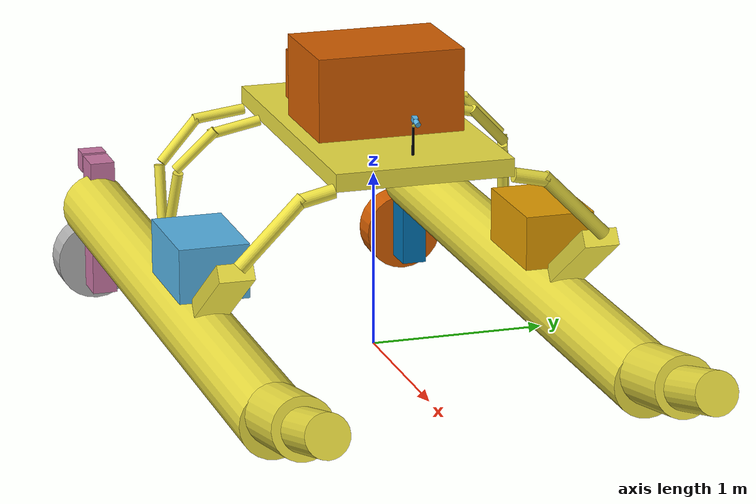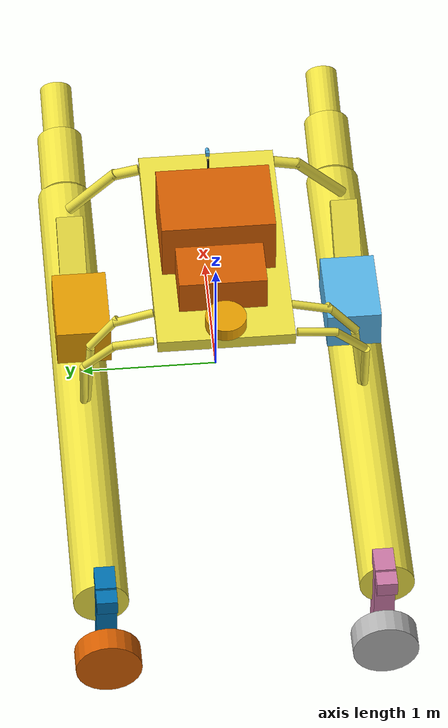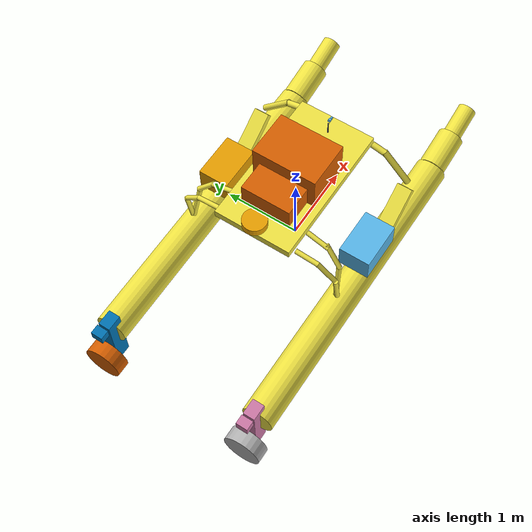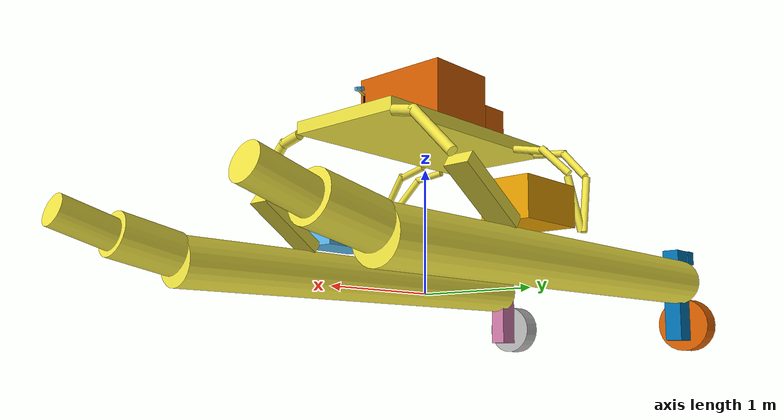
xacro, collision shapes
<?xml version="1.0" ?>
<!-- |    This document was autogenerated by xacro from cs470.urdf                     | -->
<!-- |    EDITING THIS FILE BY HAND IS NOT RECOMMENDED                                 | -->
<!-- |    This document was autogenerated by xacro from /home/seungjo/catkin_ws/src/vrx/wamv_gazebo/urdf/wamv_gazebo.urdf.xacro | -->
<!-- |    EDITING THIS FILE BY HAND IS NOT RECOMMENDED                                 | -->
<!-- Basic WAM-V with gazebo plugins for dynamics -->
<robot name="WAM-V">
  <link name="left_battery_link">
    <visual name="left_battery_visual">
      <origin rpy="0 0 0" xyz="0 -1.03 -.45"/>
      <geometry>
        <mesh filename="package://vrx_gazebo/models/battery/mesh/battery.dae"/>
      </geometry>
    </visual>
    <collision name="left_battery_collision">
      <origin rpy="0 0 0" xyz="0 0 .15"/>
      <geometry>
        <box size=".6 .4 .31"/>
      </geometry>
    </collision>
    <inertial>
      <origin rpy=" 0 0 0" xyz="0 0 .15"/>
      <mass value="23.5"/>
      <inertia ixx="0.5015291666666667" ixy="0" ixz="0" iyy="0.8931958333333333" iyz="0" izz="1.0183333333333333"/>
    </inertial>
  </link>
  <joint name="left_chasis_battery_joint" type="fixed">
    <origin rpy="0 0 0" xyz="0 1 0.45"/>
    <parent link="base_link"/>
    <child link="left_battery_link"/>
  </joint>
  <link name="right_battery_link">
    <visual name="right_battery_visual">
      <origin rpy="0 0 0" xyz="0 -1.03 -.45"/>
      <geometry>
        <mesh filename="package://vrx_gazebo/models/battery/mesh/battery.dae"/>
      </geometry>
    </visual>
    <collision name="right_battery_collision">
      <origin rpy="0 0 0" xyz="0 0 .15"/>
      <geometry>
        <box size=".6 .4 .31"/>
      </geometry>
    </collision>
    <inertial>
      <origin rpy=" 0 0 0" xyz="0 0 .15"/>
      <mass value="23.5"/>
      <inertia ixx="0.5015291666666667" ixy="0" ixz="0" iyy="0.8931958333333333" iyz="0" izz="1.0183333333333333"/>
    </inertial>
  </link>
  <joint name="right_chasis_battery_joint" type="fixed">
    <origin rpy="0 0 0" xyz="0 -1 0.45"/>
    <parent link="base_link"/>
    <child link="right_battery_link"/>
  </joint>
  <link name="base_link">
  </link>
  <joint name="dummy_joint" type="fixed">
    <parent link="base_link"/>
    <child link="dummy_link"/>
  </joint>
  <!-- Basic model of the 16' WAM-V USV -->
  <link name="dummy_link">
    <visual>
      <geometry>
        <mesh filename="package://wamv_description/models/WAM-V-Base/mesh/WAM-V-Base.dae"/>
      </geometry>
    </visual>
    <!-- Main float -->
    <collision name="left_float">
      <origin rpy="0 1.57 0" xyz="-0.4 1.03 0.2"/>
      <geometry>
        <cylinder length="4" radius="0.2"/>
      </geometry>
    </collision>
    <collision name="left_mid_float">
      <origin rpy="0 1.38 0" xyz="1.85 1.03 0.3"/>
      <geometry>
        <cylinder length="0.5" radius="0.17"/>
      </geometry>
    </collision>
    <collision name="left_front_float">
      <origin rpy="0 1.3 0" xyz="2.3 1.03 0.4"/>
      <geometry>
        <cylinder length="0.45" radius="0.12"/>
      </geometry>
    </collision>
    <!-- Front beam -->
    <collision name="front_left_beam_lower">
      <origin rpy="0.78 0 0" xyz="0.9 0.85 1"/>
      <geometry>
        <cylinder length="0.5" radius="0.04"/>
      </geometry>
    </collision>
    <collision name="front_left_beam_upper">
      <origin rpy="1.35 0 0" xyz="0.9 0.6 1.18"/>
      <geometry>
        <cylinder length="0.2" radius="0.04"/>
      </geometry>
    </collision>
    <!-- Mid beam -->
    <collision name="mid_left_beam_lower">
      <origin rpy="0.1 0.25 0" xyz="-0.65 0.99 0.7"/>
      <geometry>
        <cylinder length="0.45" radius="0.03"/>
      </geometry>
    </collision>
    <collision name="mid_left_beam_medium">
      <origin rpy="0.75 0.25 0" xyz="-0.57 0.87 1.05"/>
      <geometry>
        <cylinder length="0.32" radius="0.03"/>
      </geometry>
    </collision>
    <collision name="mid_left_beam_upper">
      <origin rpy="1.35 0.25 0" xyz="-0.55 0.65 1.17"/>
      <geometry>
        <cylinder length="0.3" radius="0.03"/>
      </geometry>
    </collision>
    <!-- Rear beam -->
    <collision name="rear_left_beam_lower">
      <origin rpy="0 -0.15 0" xyz="-0.74 1.03 0.7"/>
      <geometry>
        <cylinder length="0.45" radius="0.03"/>
      </geometry>
    </collision>
    <collision name="rear_left_beam_medium">
      <origin rpy="0.75 -0.15 0" xyz="-0.79 0.91 1.05"/>
      <geometry>
        <cylinder length="0.32" radius="0.03"/>
      </geometry>
    </collision>
    <collision name="rear_left_beam_upper">
      <origin rpy="1.45 -0.15 0" xyz="-0.81 0.67 1.18"/>
      <geometry>
        <cylinder length="0.3" radius="0.03"/>
      </geometry>
    </collision>
    <!-- Joint -->
    <collision name="left_joint">
      <origin rpy="0 -0.6 0" xyz="0.58 1.03 0.6"/>
      <geometry>
        <box size="0.65 0.2 0.1"/>
      </geometry>
    </collision>
    <!-- Main float -->
    <collision name="right_float">
      <origin rpy="0 1.57 0" xyz="-0.4 -1.03 0.2"/>
      <geometry>
        <cylinder length="4" radius="0.2"/>
      </geometry>
    </collision>
    <collision name="right_mid_float">
      <origin rpy="0 1.38 0" xyz="1.85 -1.03 0.3"/>
      <geometry>
        <cylinder length="0.5" radius="0.17"/>
      </geometry>
    </collision>
    <collision name="right_front_float">
      <origin rpy="0 1.3 0" xyz="2.3 -1.03 0.4"/>
      <geometry>
        <cylinder length="0.45" radius="0.12"/>
      </geometry>
    </collision>
    <!-- Front beam -->
    <collision name="front_right_beam_lower">
      <origin rpy="-0.78 0 0" xyz="0.9 -0.85 1"/>
      <geometry>
        <cylinder length="0.5" radius="0.04"/>
      </geometry>
    </collision>
    <collision name="front_right_beam_upper">
      <origin rpy="-1.35 0 0" xyz="0.9 -0.6 1.18"/>
      <geometry>
        <cylinder length="0.2" radius="0.04"/>
      </geometry>
    </collision>
    <!-- Mid beam -->
    <collision name="mid_right_beam_lower">
      <origin rpy="-0.1 0.25 0" xyz="-0.65 -0.99 0.7"/>
      <geometry>
        <cylinder length="0.45" radius="0.03"/>
      </geometry>
    </collision>
    <collision name="mid_right_beam_medium">
      <origin rpy="-0.75 0.25 0" xyz="-0.57 -0.87 1.05"/>
      <geometry>
        <cylinder length="0.32" radius="0.03"/>
      </geometry>
    </collision>
    <collision name="mid_right_beam_upper">
      <origin rpy="-1.35 0.25 0" xyz="-0.55 -0.65 1.17"/>
      <geometry>
        <cylinder length="0.3" radius="0.03"/>
      </geometry>
    </collision>
    <!-- Rear beam -->
    <collision name="rear_right_beam_lower">
      <origin rpy="0 -0.15 0" xyz="-0.74 -1.03 0.7"/>
      <geometry>
        <cylinder length="0.45" radius="0.03"/>
      </geometry>
    </collision>
    <collision name="rear_right_beam_medium">
      <origin rpy="-0.75 -0.15 0" xyz="-0.79 -0.91 1.05"/>
      <geometry>
        <cylinder length="0.32" radius="0.03"/>
      </geometry>
    </collision>
    <collision name="rear_right_beam_upper">
      <origin rpy="-1.45 -0.15 0" xyz="-0.81 -0.67 1.18"/>
      <geometry>
        <cylinder length="0.3" radius="0.03"/>
      </geometry>
    </collision>
    <!-- Joint -->
    <collision name="right_joint">
      <origin rpy="0 -0.6 0" xyz="0.58 -1.03 0.6"/>
      <geometry>
        <box size="0.65 0.2 0.1"/>
      </geometry>
    </collision>
    <!-- Top base -->
    <collision name="top_base">
      <origin rpy="0 0 0" xyz="0 -0 1.25"/>
      <geometry>
        <box size="1.85 1 0.1"/>
      </geometry>
    </collision>
    <inertial>
      <!-- From WAM-V spec sheet -->
      <mass value="180.0"/>
      <inertia ixx="120.0" ixy="0.0" ixz="0.0" iyy="393" iyz="0.0" izz="446.0"/>
    </inertial>
  </link>
  <link name="left_r_engine_link">
    <visual>
      <geometry>
        <mesh filename="package://wamv_description/models/engine/mesh/engine.dae"/>
      </geometry>
    </visual>
    <collision name="left_r_engine_vertical_axis_collision">
      <origin rpy="0 0 0" xyz="-0.16 0 -0.24"/>
      <geometry>
        <box size="0.2 0.15 0.83"/>
      </geometry>
    </collision>
    <collision name="left_r_engine_rear_end_collision">
      <origin rpy="0 0 0" xyz="-0.34 0 0.12"/>
      <geometry>
        <box size="0.12 0.15 0.12"/>
      </geometry>
    </collision>
    <inertial>
      <mass value="15"/>
      <inertia ixx="0.889245" ixy="0.0" ixz="0.0" iyy="0.911125" iyz="0.0" izz="0.078125"/>
    </inertial>
  </link>
  <link name="left_r_propeller_link">
    <visual>
      <geometry>
        <mesh filename="package://wamv_description/models/propeller/mesh/propeller.dae"/>
      </geometry>
    </visual>
    <collision name="left_r_propeller_collision">
      <origin rpy="0 1.57 0" xyz="-0.08 0 0"/>
      <geometry>
        <cylinder length="0.18" radius="0.24"/>
      </geometry>
    </collision>
    <inertial>
      <mass value="0.5"/>
      <inertia ixx="0.008545" ixy="0.0" ixz="0.0" iyy="0.008545" iyz="0.0" izz="0.0144"/>
    </inertial>
  </link>
  <joint name="left_r_chasis_engine_joint" type="revolute">
    <axis xyz="0 0 1"/>
    <limit effort="10" lower="-3.14159265359" upper="3.14159265359" velocity="10"/>
    <origin rpy="0.0 0.0 0.0" xyz="-2.25 1 0.318237"/>
    <parent link="base_link"/>
    <child link="left_r_engine_link"/>
  </joint>
  <joint name="left_r_engine_propeller_joint" type="continuous">
    <axis rpy="0 0 0" xyz="1 0 0"/>
    <parent link="left_r_engine_link"/>
    <child link="left_r_propeller_link"/>
    <origin rpy="0 0 0" xyz="-0.278156 0 -0.509371"/>
    <limit effort="100" velocity="100"/>
    <dynamics damping="0.05" friction="0.05"/>
  </joint>
  <link name="right_r_engine_link">
    <visual>
      <geometry>
        <mesh filename="package://wamv_description/models/engine/mesh/engine.dae"/>
      </geometry>
    </visual>
    <collision name="right_r_engine_vertical_axis_collision">
      <origin rpy="0 0 0" xyz="-0.16 0 -0.24"/>
      <geometry>
        <box size="0.2 0.15 0.83"/>
      </geometry>
    </collision>
    <collision name="right_r_engine_rear_end_collision">
      <origin rpy="0 0 0" xyz="-0.34 0 0.12"/>
      <geometry>
        <box size="0.12 0.15 0.12"/>
      </geometry>
    </collision>
    <inertial>
      <mass value="15"/>
      <inertia ixx="0.889245" ixy="0.0" ixz="0.0" iyy="0.911125" iyz="0.0" izz="0.078125"/>
    </inertial>
  </link>
  <link name="right_r_propeller_link">
    <visual>
      <geometry>
        <mesh filename="package://wamv_description/models/propeller/mesh/propeller.dae"/>
      </geometry>
    </visual>
    <collision name="right_r_propeller_collision">
      <origin rpy="0 1.57 0" xyz="-0.08 0 0"/>
      <geometry>
        <cylinder length="0.18" radius="0.24"/>
      </geometry>
    </collision>
    <inertial>
      <mass value="0.5"/>
      <inertia ixx="0.008545" ixy="0.0" ixz="0.0" iyy="0.008545" iyz="0.0" izz="0.0144"/>
    </inertial>
  </link>
  <joint name="right_r_chasis_engine_joint" type="revolute">
    <axis xyz="0 0 1"/>
    <limit effort="10" lower="-3.14159265359" upper="3.14159265359" velocity="10"/>
    <origin rpy="0.0 0.0 0.0" xyz="-2.25 -1 0.318237"/>
    <parent link="base_link"/>
    <child link="right_r_engine_link"/>
  </joint>
  <joint name="right_r_engine_propeller_joint" type="continuous">
    <axis rpy="0 0 0" xyz="1 0 0"/>
    <parent link="right_r_engine_link"/>
    <child link="right_r_propeller_link"/>
    <origin rpy="0 0 0" xyz="-0.278156 0 -0.509371"/>
    <limit effort="100" velocity="100"/>
    <dynamics damping="0.05" friction="0.05"/>
  </joint>
  <gazebo>
    <plugin filename="libusv_gazebo_thrust_plugin.so" name="wamv_gazebo_thrust">
      <cmdTimeout>1.0</cmdTimeout>
      <robotNamespace>wamv</robotNamespace>
      <thruster>
        <!-- Required Parameters -->
        <linkName>left_r_propeller_link</linkName>
        <propJointName>left_r_engine_propeller_joint</propJointName>
        <engineJointName>left_r_chasis_engine_joint</engineJointName>
        <cmdTopic>thrusters/left_r_thrust_cmd</cmdTopic>
        <angleTopic>thrusters/left_r_thrust_angle</angleTopic>
        <enableAngle>true</enableAngle>
        <!-- Optional Parameters -->
        <mappingType>1</mappingType>
        <maxCmd>1.0</maxCmd>
        <maxForceFwd>250.0</maxForceFwd>
        <maxForceRev>-100.0</maxForceRev>
        <maxAngle>1.57079632679</maxAngle>
      </thruster>
      <thruster>
        <!-- Required Parameters -->
        <linkName>right_r_propeller_link</linkName>
        <propJointName>right_r_engine_propeller_joint</propJointName>
        <engineJointName>right_r_chasis_engine_joint</engineJointName>
        <cmdTopic>thrusters/right_r_thrust_cmd</cmdTopic>
        <angleTopic>thrusters/right_r_thrust_angle</angleTopic>
        <enableAngle>true</enableAngle>
        <!-- Optional Parameters -->
        <mappingType>1</mappingType>
        <maxCmd>1.0</maxCmd>
        <maxForceFwd>250.0</maxForceFwd>
        <maxForceRev>-100.0</maxForceRev>
        <maxAngle>1.57079632679</maxAngle>
      </thruster>
    </plugin>
  </gazebo>
  <!--Gazebo Plugin for simulating WAM-V dynamics-->
  <gazebo>
    <plugin filename="libusv_gazebo_dynamics_plugin.so" name="usv_dynamics_wamv_dynamics_plugin">
      <bodyName>base_link</bodyName>
      <!-- Must be same as the ocean model!-->
      <waterLevel>0</waterLevel>
      <waterDensity>997.8</waterDensity>
      <!-- Added mass -->
      <xDotU>0.0</xDotU>
      <yDotV>0.0</yDotV>
      <nDotR>0.0</nDotR>
      <!-- Linear and quadratic drag -->
      <xU>51.3</xU>
      <xUU>72.4</xUU>
      <yV>40.0</yV>
      <yVV>0.0</yVV>
      <zW>500.0</zW>
      <kP>50.0</kP>
      <mQ>50.0</mQ>
      <nR>400.0</nR>
      <nRR>0.0</nRR>
      <!-- General dimensions -->
      <hullRadius>0.213</hullRadius>
      <boatWidth>2.4</boatWidth>
      <boatLength>4.9</boatLength>
      <!-- Length discretization, AKA, "N" -->
      <length_n>2</length_n>
      <!-- Wave model -->
      <wave_model>ocean_waves</wave_model>
    </plugin>
  </gazebo>
  <link name="gps_wamv_link">
    <visual name="gps_wamv_visual">
      <geometry>
        <mesh filename="package://wamv_gazebo/models/gps/mesh/gps.dae"/>
      </geometry>
    </visual>
    <collision name="gps_wamv_collision_base">
      <origin rpy="0 0 0" xyz="0 0 0.025"/>
      <geometry>
        <cylinder length="0.05" radius="0.015"/>
      </geometry>
    </collision>
    <collision name="gps_wamv_collision_antenna">
      <origin rpy="0 0 0" xyz="0 0 0.11"/>
      <geometry>
        <cylinder length="0.1" radius="0.15"/>
      </geometry>
    </collision>
    <inertial>
      <mass value="1"/>
      <inertia ixx="0.006458" ixy="0.0" ixz="0.0" iyy="0.006458" iyz="0.0" izz="0.01125"/>
    </inertial>
  </link>
  <joint name="gps_wamv_joint" type="fixed">
    <origin rpy="0 0 0" xyz="-0.85 0 1.3"/>
    <parent link="base_link"/>
    <child link="gps_wamv_link"/>
  </joint>
  <gazebo>
    <plugin filename="libhector_gazebo_ros_gps.so" name="gps_plugin_gps_wamv">
      <updateRate>15.0</updateRate>
      <alwaysOn>true</alwaysOn>
      <bodyName>gps_wamv_link</bodyName>
      <!-- Manually prepend namespace to tf frame. -->
      <frameId>wamv/gps_wamv_link</frameId>
      <topicName>wamv/sensors/gps/gps/fix</topicName>
      <velocityTopicName>wamv/sensors/gps/gps/fix_velocity</velocityTopicName>
      <!-- Location of origin of Gazebo Sand Island map -->
      <referenceLatitude>21.30996</referenceLatitude>
      <referenceLongitude>-157.8901</referenceLongitude>
      <referenceAltitude>1.3</referenceAltitude>
      <referenceHeading>90</referenceHeading>
      <offset>0.0 0.0 0.0</offset>
      <drift>0.0 0.0 0.0</drift>
      <gaussianNoise>0 0 0</gaussianNoise>
      <velocityOffset>0.0 0.0 0.0</velocityOffset>
      <velocityDrift>0.0 0.0 0.0</velocityDrift>
      <velocityGaussianNoise>0.0 0.0 0.0</velocityGaussianNoise>
    </plugin>
  </gazebo>
  <gazebo>
    <plugin filename="libgazebo_ros_p3d.so" name="p3d_plugin_p3d_wamv">
      <bodyName>base_link</bodyName>
      <frameName>map</frameName>
      <updateRate>10.0</updateRate>
      <topicName>wamv/sensors/position/p3d_wamv</topicName>
      <xyzOffset>0 0 0</xyzOffset>
      <rpyOffset>0 0 0</rpyOffset>
      <gaussianNoise>0</gaussianNoise>
    </plugin>
  </gazebo>
  <!-- Monocular Camera -->
  <link name="middle_camera_link">
    <visual name="middle_camera_visual">
      <origin rpy="0 0 1.57079632679" xyz="-0.033 0 0"/>
      <geometry>
        <mesh filename="package://vrx_gazebo/models/mono_camera/mesh/mono_camera.dae"/>
      </geometry>
    </visual>
    <collision name="middle_camera_lens_collision">
      <origin rpy="0 1.57079632679 0" xyz="0.018 0 0"/>
      <geometry>
        <cylinder length="0.042" radius="0.015"/>
      </geometry>
    </collision>
    <collision name="middle_camera_box_collision">
      <origin rpy="0 0 0" xyz="-0.0205 0 0"/>
      <geometry>
        <box size="0.036 0.03 0.03"/>
      </geometry>
    </collision>
    <inertial>
      <mass value="0.3"/>
      <inertia ixx="0.0000450" ixy="0" ixz="0" iyy="0.0001746" iyz="0" izz="0.0001746"/>
    </inertial>
  </link>
  <!-- Sensor post -->
  <link name="middle_camera_post_link">
    <visual>
      <geometry>
        <cylinder length="0.1765" radius="0.0076"/>
      </geometry>
      <material name="middle_camera_post_material">
        <color rgba="0.0 0.0 0.0 1.0"/>
      </material>
    </visual>
    <collision name="middle_camera_post_collision">
      <geometry>
        <cylinder length="0.1765" radius="0.0076"/>
      </geometry>
    </collision>
    <inertial>
      <mass value="0.15885"/>
      <inertia ixx="0.000414671703375" ixy="0" ixz="0" iyy="0.000414671703375" iyz="0" izz="4.587588e-06"/>
    </inertial>
  </link>
  <!-- Sensor post arm -->
  <link name="middle_camera_post_arm_link">
    <visual name="middle_camera_post_arm_visual">
      <origin rpy="-1.0471975512 0 -1.57079632679" xyz="-0.038 0 -0.003"/>
      <geometry>
        <mesh filename="package://vrx_gazebo/models/sensor_post/mesh/sensor_post_arm.dae"/>
      </geometry>
    </visual>
    <collision name="middle_camera_post_arm_collision">
      <origin rpy="-1.20427718388 0 -1.57079632679" xyz="0 0 0"/>
      <geometry>
        <cylinder length="0.065" radius="0.008"/>
      </geometry>
    </collision>
    <inertial>
      <origin rpy="-1.20427718388 0 -1.57079632679" xyz="0 0 0"/>
      <mass value="0.1"/>
      <inertia ixx="0.00003680833" ixy="0" ixz="0" iyy="0.00003680833" iyz="0" izz="0.00000320000"/>
    </inertial>
  </link>
  <joint name="base_to_middle_camera_post_joint" type="fixed">
    <origin rpy="0 0 0" xyz="0.7 1e-09 1.38475"/>
    <parent link="base_link"/>
    <child link="middle_camera_post_link"/>
  </joint>
  <!-- Sensor post to sensor post arm joint -->
  <joint name="middle_camera_post_to_middle_camera_post_arm_joint" type="fixed">
    <origin rpy="0 0 0" xyz="0.03 0 0.08825"/>
    <parent link="middle_camera_post_link"/>
    <child link="middle_camera_post_arm_link"/>
  </joint>
  <!-- Sensor post arm to camera joint -->
  <joint name="middle_camera_post_arm_to_middle_camera_joint" type="fixed">
    <origin rpy="0 0.261799387799 0" xyz="0.02 0 0.027"/>
    <parent link="middle_camera_post_arm_link"/>
    <child link="middle_camera_link"/>
  </joint>
  <!-- Gazebo camera setup -->
  <gazebo reference="middle_camera_link">
    <sensor name="middle_camera_sensor" type="camera">
      <update_rate>30.0</update_rate>
      <camera name="middle_camera_camera">
        <horizontal_fov>1.3962634</horizontal_fov>
        <image>
          <width>1280</width>
          <height>720</height>
          <format>R8G8B8</format>
        </image>
        <clip>
          <near>0.05</near>
          <far>300</far>
        </clip>
        <noise>
          <type>gaussian</type>
          <!-- Noise is sampled independently per pixel on each frame.
                 That pixel's noise value is added to each of its color
                 channels, which at that point lie in the range [0,1]. -->
          <mean>0.0</mean>
          <stddev>0.007</stddev>
        </noise>
      </camera>
      <plugin filename="libgazebo_ros_camera.so" name="camera_plugin_middle_camera">
        <alwaysOn>true</alwaysOn>
        <updateRate>0.0</updateRate>
        <cameraName>wamv/sensors/cameras/middle_camera</cameraName>
        <imageTopicName>image_raw</imageTopicName>
        <cameraInfoTopicName>camera_info</cameraInfoTopicName>
        <frameName>middle_camera_link_optical</frameName>
        <hackBaseline>0.07</hackBaseline>
        <distortionK1>0.0</distortionK1>
        <distortionK2>0.0</distortionK2>
        <distortionK3>0.0</distortionK3>
        <distortionT1>0.0</distortionT1>
        <distortionT2>0.0</distortionT2>
      </plugin>
    </sensor>
  </gazebo>
  <!-- Set color of post -->
  <gazebo reference="middle_camera_post_link">
    <material>Gazebo/Black</material>
  </gazebo>
  <link name="imu_wamv_link">
    <visual name="imu_wamv_visual">

      &gt;

      <geometry>
        <box size="0.05 0.025 0.005"/>
      </geometry>
      <material name="imu_wamv_visual_material">
        <color rgba="1.0 0.0 00 1.0"/>
      </material>
    </visual>
  </link>
  <joint name="imu_wamv_joint" type="fixed">
    <origin rpy="0 0 0" xyz="0.3 -0.2 1.3"/>
    <parent link="base_link"/>
    <child link="imu_wamv_link"/>
  </joint>
  <gazebo>
    <plugin filename="libhector_gazebo_ros_imu.so" name="imu_plugin_imu_wamv">
      <updateRate>15.0</updateRate>
      <bodyName>imu_wamv_link</bodyName>
      <topicName>wamv/sensors/imu/imu/data</topicName>
      <serviceName>wamv/sensors/imu_service</serviceName>
      <!-- Manually prepend namespace to tf frame. -->
      <frameId>wamv/imu_wamv_link</frameId>
      <alwaysOn>true</alwaysOn>
      <accelOffset>0.0 0.0 0.0</accelOffset>
      <accelDrift>0.0 0.0 0.0</accelDrift>
      <accelDriftFrequency>0.00027 0.00027 0.000027</accelDriftFrequency>
      <accelGaussianNoise>0.0 0.0 0.0</accelGaussianNoise>
      <rateOffset>0.0 0.0 0.0</rateOffset>
      <rateDrift>0.0 0.0 0.0</rateDrift>
      <rateDriftFrequency>0.00027 0.00027 0.000027</rateDriftFrequency>
      <rateGaussianNoise>0.0 0.0 0.0</rateGaussianNoise>
      <yawOffset>0.0</yawOffset>
      <yawDrift>0.0</yawDrift>
      <yawDriftFrequency>0.00027</yawDriftFrequency>
      <yawGaussianNoise>0.0</yawGaussianNoise>
    </plugin>
  </gazebo>
  <link name="cpu_cases_link">
    <visual name="cpu_cases_visual">
      <origin rpy="0 0 0" xyz="0.073 0 -1.53"/>
      <geometry>
        <mesh filename="package://vrx_gazebo/models/cpu_cases/mesh/cpu_cases.dae"/>
      </geometry>
    </visual>
    <collision name="cpu_case_1_collision">
      <origin rpy="0 0 0" xyz="0.185 0 0"/>
      <geometry>
        <box size="0.595 0.83 0.47"/>
      </geometry>
    </collision>
    <collision name="cpu_case_2_collision">
      <origin rpy="0 0 0" xyz="-0.3 0 -0.092"/>
      <geometry>
        <box size="0.375 0.64 0.28"/>
      </geometry>
    </collision>
    <inertial>
      <mass value="20"/>
      <inertia ixx="1.51633333333333" ixy="0" ixz="0" iyy="1.93633333333333" iyz="0" izz="2.71633333333333"/>
    </inertial>
  </link>
  <joint name="chasis_cpu_cases_joint" type="fixed">
    <origin rpy="0 0 0" xyz="-0.15 0 1.53"/>
    <parent link="base_link"/>
    <child link="cpu_cases_link"/>
  </joint>
</robot>
